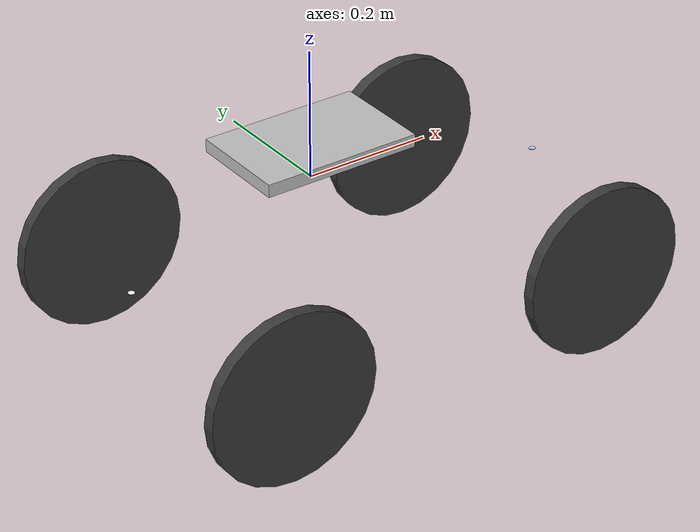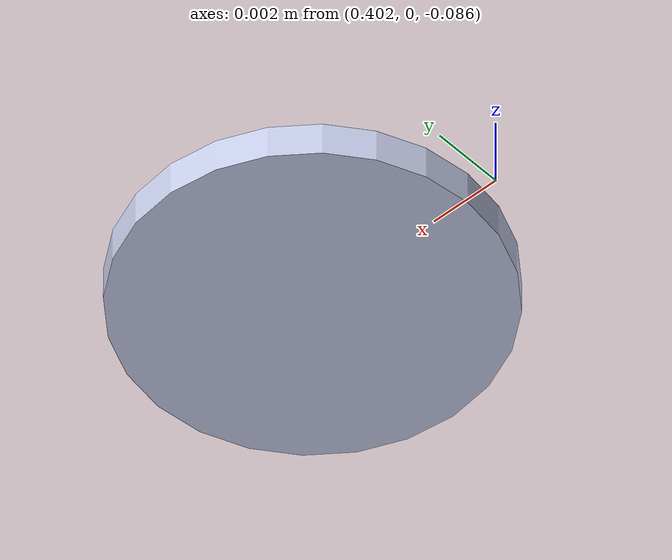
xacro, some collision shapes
<?xml version="1.0" encoding="utf-8"?>
<robot
  name="hunter_se_description">
  <link
    name="base_link">
    <inertial>
      <origin
        xyz="0.0374140021041951 -0.000373005187591258 -0.0771282894414029"
        rpy="0 0 0" />
      <mass
        value="10" />
      <inertia
        ixx="0.123215829336501"
        ixy="-2.51201031615063E-06"
        ixz="0.00480100638469038"
        iyy="0.219144715482931"
        iyz="-1.0329581476775E-05"
        izz="0.313606030126045" />
    </inertial>
    <visual>
      <origin
        xyz="0 0 0"
        rpy="0 0 0" />
      <geometry>
        <mesh
          filename="package://hunter_se_description/meshes/base_link.STL" />
      </geometry>
      <material
        name="">
        <color
          rgba="0.752941176470588 0.752941176470588 0.752941176470588 1" />
      </material>
    </visual>
       		<collision>
   			<origin xyz="0 0 0.055" rpy="0 0 0" />
      		<geometry>
        		<box size="0.25 0.16 0.02" />
      		</geometry>
    	</collision>
  </link>
  <link
    name="fr_steer_left_link">
    <inertial>
      <origin
        xyz="-0.0002776492198312 0.0163539773588368 4.97346169803237E-09"
        rpy="0 0 0" />
      <mass
        value="1" />
      <inertia
        ixx="0.0222"
        ixy="0.0"
        ixz="0.0"
        iyy="0.0222"
        iyz="0.0"
        izz="0.0378075" />
    </inertial>
    <visual>
      <origin
        xyz="0 0 0"
        rpy="0 0 0" />
      <geometry>
        <box size="0.001 0.001 0.001"/>
      </geometry>
      <material
        name="">
        <color
          rgba="0.223529411764706 0.223529411764706 0.223529411764706 1" />
      </material>
    </visual>
    <collision>
      <origin
        xyz="0 0 0"
        rpy="0 0 0" />
      <geometry>
        <box size="0.001 0.001 0.001"/>
      </geometry>
    </collision>
  </link>
  <joint
    name="fr_steer_left_joint"
    type="revolute">
    <origin
      xyz="0.34058 0.24619 -0.1535"
      rpy="0 0 0" />
    <parent
      link="base_link" />
    <child
      link="fr_steer_left_link" />
    <axis
      xyz="0 0 1" />
    <limit
      lower="-0.69"
      upper="0.69"
      effort="0"
      velocity="0" />
  </joint>
  <link
    name="fr_left_link">
            <inertial>
      <origin
        xyz="0.00027498198567355 3.24801296969213E-11 -0.0163540222836661"
        rpy="0 0 0" />
      <mass
        value="1" />
      <inertia
        ixx="0.0222"
        ixy="0.0"
        ixz="0.0"
        iyy="0.0222"
        iyz="0.0"
        izz="0.0378075" />
    </inertial>
		<cylinder_inertial_matrix m="1" r="0.1349" h="0.02"/>
		<visual>
			<origin rpy="0 0 0" xyz="0 0 0"/>
			<geometry>
				<cylinder length=".02" radius="0.1349"/>
			</geometry>
			<material name="">
        <color
          rgba="0.223529411764706 0.223529411764706 0.223529411764706 1" />
		  	</material>
		</visual>
		<collision>
			<origin rpy="0 0 0" xyz="0 0 0"/>
		  	<geometry>
		  		<cylinder length=".02" radius="0.1349"/>
		  	</geometry>
		</collision>
  </link>
  <joint
    name="fr_left_joint"
    type="continuous">
    <origin
      xyz="0 0 0"
      rpy="1.5708 0 0.016976" />
    <parent
      link="fr_steer_left_link" />
    <child
      link="fr_left_link" />
    <axis
      xyz="0 0 -1" />
  </joint>
  <link
    name="fr_steer_right_link">
    <inertial>
      <origin
        xyz="0.000274981985673328 -0.0163540222836661 -3.24802407192237E-11"
        rpy="0 0 0" />
      <mass
        value="1" />
      <inertia
        ixx="0.0222"
        ixy="0.0"
        ixz="0.0"
        iyy="0.0222"
        iyz="0.0"
        izz="0.0378075" />
    </inertial>
    <visual>
      <origin
        xyz="0 0 0"
        rpy="0 0 0" />
      <geometry>
        <box size="0.001 0.001 0.001"/>
      </geometry>
      <material
        name="">
        <color
          rgba="1 1 1 1" />
      </material>
    </visual>
    <collision>
      <origin
        xyz="0 0 0"
        rpy="0 0 0" />
      <geometry>
        <box size="0.001 0.001 0.001"/>
      </geometry>
    </collision>
  </link>
  <joint
    name="fr_steer_right_joint"
    type="revolute">
    <origin
      xyz="0.34219 -0.24619 -0.1535"
      rpy="0 0 0" />
    <parent
      link="base_link" />
    <child
      link="fr_steer_right_link" />
    <axis
      xyz="0 0 1" />
    <limit
      lower="-0.69"
      upper="0.69"
      effort="0"
      velocity="0" />
  </joint>
  <link
    name="fr_right_link">
        <inertial>
      <origin
        xyz="0.00027498198567355 3.24801296969213E-11 -0.0163540222836661"
        rpy="0 0 0" />
      <mass
        value="1" />
      <inertia
        ixx="0.0222"
        ixy="0.0"
        ixz="0.0"
        iyy="0.0222"
        iyz="0.0"
        izz="0.0378075" />
    </inertial>
		<cylinder_inertial_matrix m="1" r="0.1349" h="0.02"/>
		<visual>
			<origin rpy="0 0 0" xyz="0 0 0"/>
			<geometry>
				<cylinder length=".02" radius="0.1349"/>
			</geometry>
			<material name="">
        <color
          rgba="0.223529411764706 0.223529411764706 0.223529411764706 1" />
		  	</material>
		</visual>
		<collision>
			<origin rpy="0 0 0" xyz="0 0 0"/>
		  	<geometry>
		  		<cylinder length=".02" radius="0.1349"/>
		  	</geometry>
		</collision>
  </link>
  <joint
    name="fr_right_joint"
    type="continuous">
    <origin
      xyz="0 0 0"
      rpy="-1.5708 0 0" />
    <parent
      link="fr_steer_right_link" />
    <child
      link="fr_right_link" />
    <axis
      xyz="0 0 1" />
  </joint>

  <link
    name="re_left_link">
        <inertial>
      <origin
        xyz="0.00027498198567355 3.24801296969213E-11 -0.0163540222836661"
        rpy="0 0 0" />
      <mass
        value="1" />
      <inertia
        ixx="0.0222"
        ixy="0.0"
        ixz="0.0"
        iyy="0.0222"
        iyz="0.0"
        izz="0.0378075" />
    </inertial>
		<cylinder_inertial_matrix m="1" r="0.1349" h="0.02"/>
		<visual>
			<origin rpy="0 0 0" xyz="0 0 0"/>
			<geometry>
				<cylinder length=".02" radius="0.1349"/>
			</geometry>
			<material name="">
        <color
          rgba="0.223529411764706 0.223529411764706 0.223529411764706 1" />
		  	</material>
		</visual>
		<collision>
			<origin rpy="0 0 0" xyz="0 0 0"/>
		  	<geometry>
		  		<cylinder length=".02" radius="0.1349"/>
		  	</geometry>
		</collision>
  </link>
  <joint
    name="re_left_joint"
    type="continuous">
    <origin
      xyz="-0.2078 0.252 -0.158"
      rpy="1.5708 0 0" />
    <parent
      link="base_link" />
    <child
      link="re_left_link" />
    <axis
      xyz="0 0 -1" />
  </joint>
  <link
    name="re_right_link">
            <inertial>
      <origin
        xyz="0.00027498198567355 3.24801296969213E-11 -0.0163540222836661"
        rpy="0 0 0" />
      <mass
        value="1" />
      <inertia
        ixx="0.0222"
        ixy="0.0"
        ixz="0.0"
        iyy="0.0222"
        iyz="0.0"
        izz="0.0378075" />
    </inertial>
		<cylinder_inertial_matrix m="1" r="0.1349" h="0.02"/>
		<visual>
			<origin rpy="0 0 0" xyz="0 0 0"/>
			<geometry>
				<cylinder length=".02" radius="0.1349"/>
			</geometry>
			<material name="">
        <color
          rgba="0.223529411764706 0.223529411764706 0.223529411764706 1" />
		  	</material>
		</visual>
		<collision>
			<origin rpy="0 0 0" xyz="0 0 0"/>
		  	<geometry>
		  		<cylinder length=".02" radius="0.1349"/>
		  	</geometry>
		</collision>
  </link>
  <joint
    name="re_right_joint"
    type="continuous">
    <origin
      xyz="-0.2078 -0.252 -0.158"
      rpy="-1.5708 0 0" />
    <parent
      link="base_link" />
    <child
      link="re_right_link" />
    <axis
      xyz="0 0 1" />
  </joint>

  <link
    name="front_steer_link">
    <inertial>
      <origin
        xyz="0.049836 8.1046E-15 0.017912"
        rpy="0 0 0" />
      <mass
        value="0.0049179" />
      <inertia
        ixx="1.6846E-07"
        ixy="7.6396E-23"
        ixz="-1.0974E-08"
        iyy="7.549E-07"
        iyz="-1.8957E-22"
        izz="7.334E-07" />
    </inertial>
    <visual>
      <origin
        xyz="0 0 0"
        rpy="0 0 0" />
      <geometry>
      <cylinder length="0.001" radius="0.005"/>
      </geometry>
      <material
        name="">
        <color
          rgba="0.79216 0.81961 0.93333 1" />
      </material>
    </visual>
    <collision>
      <origin
        xyz="0 0 0"
        rpy="0 0 0" />
      <geometry>
      <cylinder length="0.001" radius="0.005"/>
      </geometry>
    </collision>
  </link>
  <joint
    name="front_steer_joint"
    type="revolute">
    <origin
      xyz="0.40792 -1.1431E-05 -0.085581"
      rpy="0 0 0" />
    <parent
      link="base_link" />
    <child
      link="front_steer_link" />
    <axis
      xyz="0 0 1" />
    <limit
      lower="-0.72"
      upper="0.72"
      effort="0"
      velocity="0" />
  </joint>
  <link
    name="rear_wheel_link">
    <inertial>
      <origin
        xyz="-0.02 0.0031269 -0.12735"
        rpy="0 0 0" />
      <mass
        value="0.0049179" />
      <inertia
        ixx="1.1821E-06"
        ixy="9.6965E-13"
        ixz="-3.1553E-12"
        iyy="9.5276E-07"
        iyz="1.2428E-08"
        izz="1.0913E-06" />
    </inertial>
    <visual>
      <origin
        xyz="0 0 0"
        rpy="0 0 0" />
      <geometry>
      <cylinder length="0.001" radius="0.005"/>
      </geometry>
      <material
        name="">
        <color
          rgba="1 1 1 1" />
      </material>
    </visual>
    <collision>
      <origin
        xyz="0 0 0"
        rpy="0 0 0" />
      <geometry>
      <cylinder length="0.001" radius="0.005"/>
      </geometry>
    </collision>
  </link>
  <joint
    name="rear_wheel_joint"
    type="continuous">
    <origin
      xyz="-0.30408 -1.1431E-05 -0.085581"
      rpy="0.0032313 0 0" />
    <parent
      link="base_link" />
    <child
      link="rear_wheel_link" />
    <axis
      xyz="0 0 1" />
  </joint>

  <gazebo>
    <plugin name="gazebo_ros_control" filename="libgazebo_ros_control.so">
      <robotSimType>steer_bot_hardware_gazebo/SteerBotHardwareGazebo</robotSimType>
      <legacyModeNS>false</legacyModeNS>
    </plugin>
  </gazebo>

</robot>
